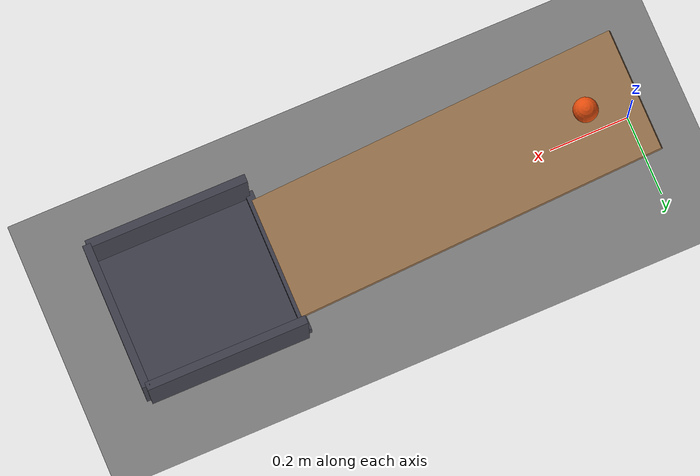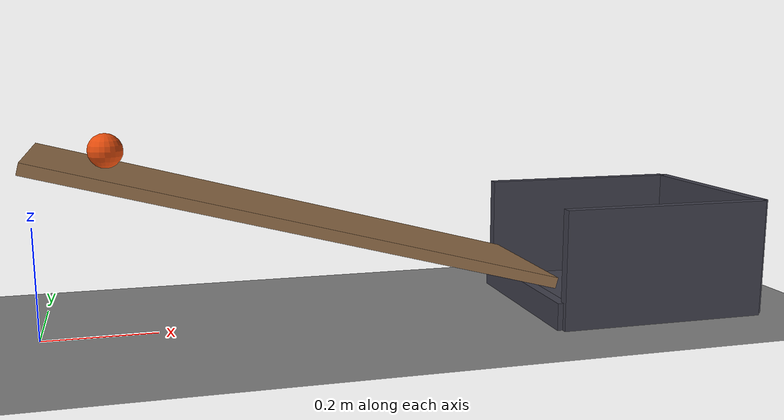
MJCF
<mujoco model="ball_rolls_into_a_cup">
  <compiler angle="radian"/>
  <option timestep="0.002"/>
  <worldbody>
    <geom name="floor" type="plane" size="4 4 0.1" friction="0.8 0.005 0.002"/>
    <body name="ramp">
      <geom name="ramp" type="box" pos="0.45 0 0.2" size="0.465725 0.15 0.01" euler="0 0.260602 0" friction="0.8 0.005 0.001" solref="0.01 1" rgba="0.6 0.45 0.3 1"/>
    </body>
    <body name="cup">
      <geom name="cup_base" type="box" pos="1.1 0 0.01" size="0.2 0.18 0.01" friction="1 0.02 0.015" solref="0.01 1" rgba="0.25 0.25 0.3 1"/>
      <geom name="cup_near_wall" type="box" pos="0.9 0 0.025" size="0.01 0.18 0.025" friction="1 0.02 0.015" solref="0.01 1" rgba="0.25 0.25 0.3 1"/>
      <geom name="cup_far_wall" type="box" pos="1.3 0 0.11" size="0.01 0.18 0.11" friction="1 0.02 0.015" solref="0.01 1" rgba="0.25 0.25 0.3 1"/>
      <geom name="cup_left_wall" type="box" pos="1.1 0.18 0.11" size="0.2 0.01 0.11" friction="1 0.02 0.015" solref="0.01 1" rgba="0.25 0.25 0.3 1"/>
      <geom name="cup_right_wall" type="box" pos="1.1 -0.18 0.11" size="0.2 0.01 0.11" friction="1 0.02 0.015" solref="0.01 1" rgba="0.25 0.25 0.3 1"/>
    </body>
    <body name="ball" pos="0.126255 0 0.32773">
      <freejoint/>
      <geom name="ball" type="sphere" pos="0 0 0" size="0.03" mass="0.08" condim="6" friction="0.8 0.005 0.001" solref="0.01 1" rgba="0.9 0.3 0.05 1"/>
    </body>
  </worldbody>
  <keyframe>
    <key name="start" qpos="0.126255 0 0.32773 1 0 0 0" qvel="0 0 0 0 0 0"/>
  </keyframe>
</mujoco>
